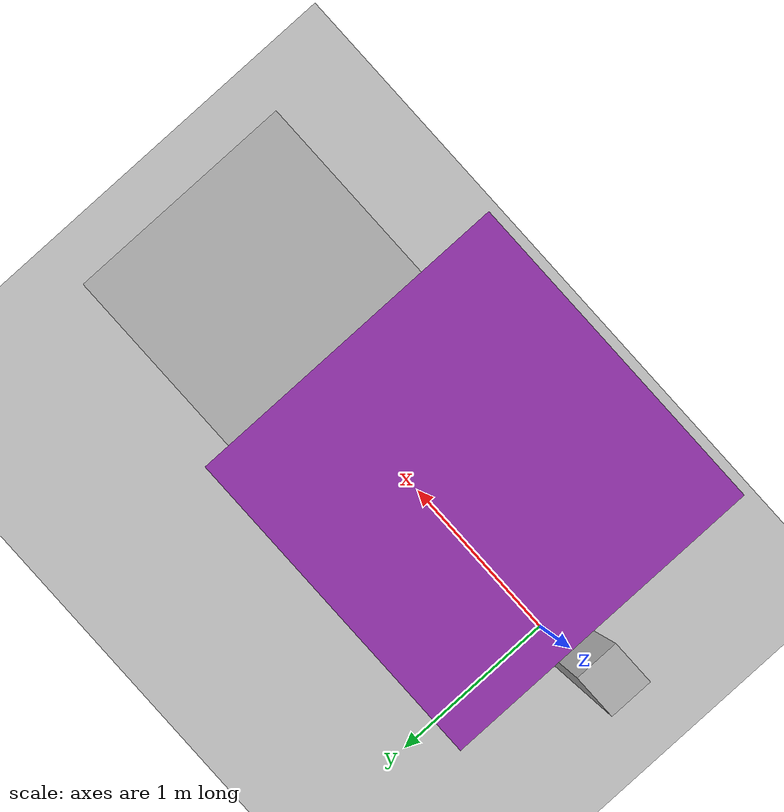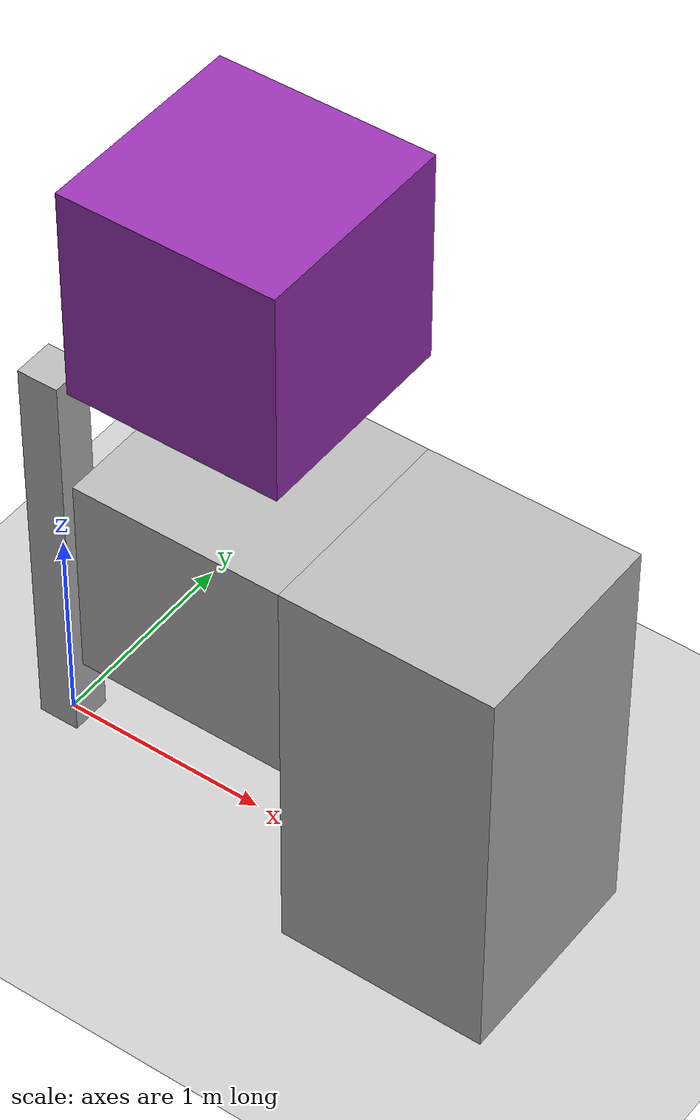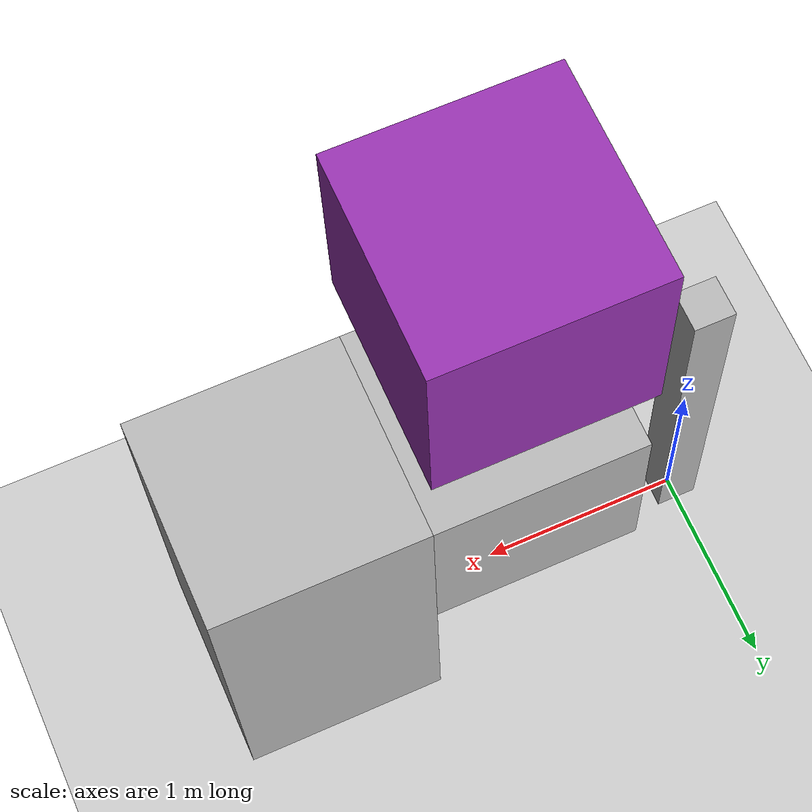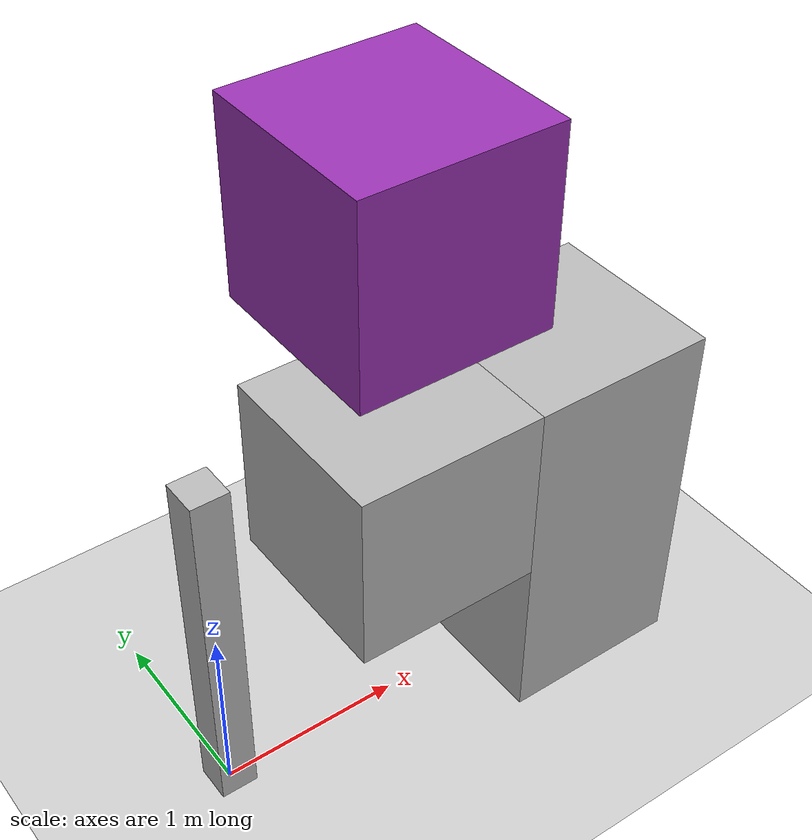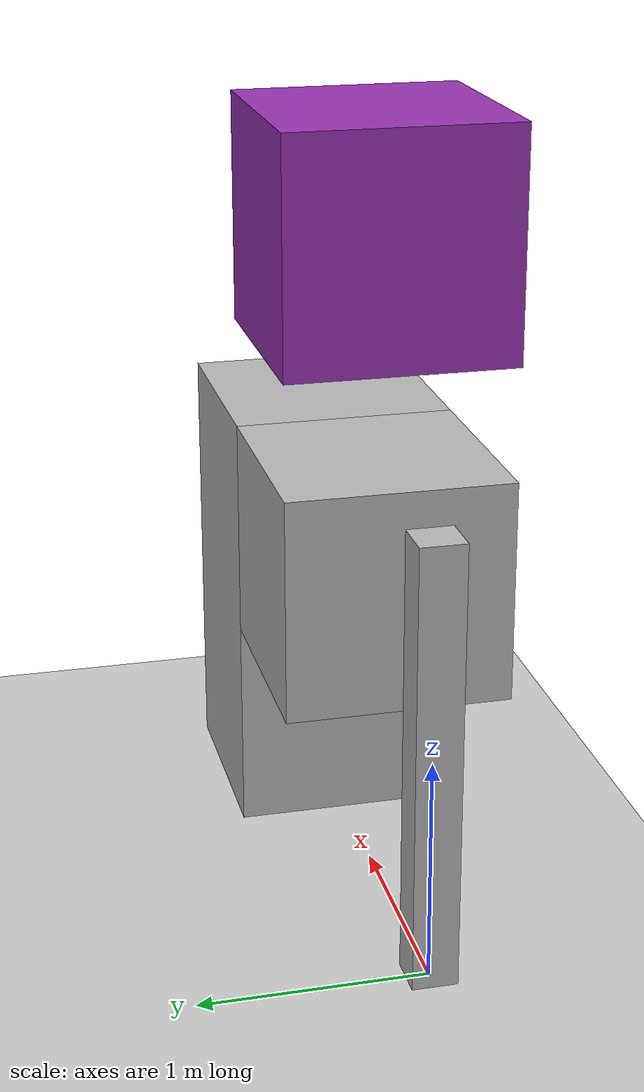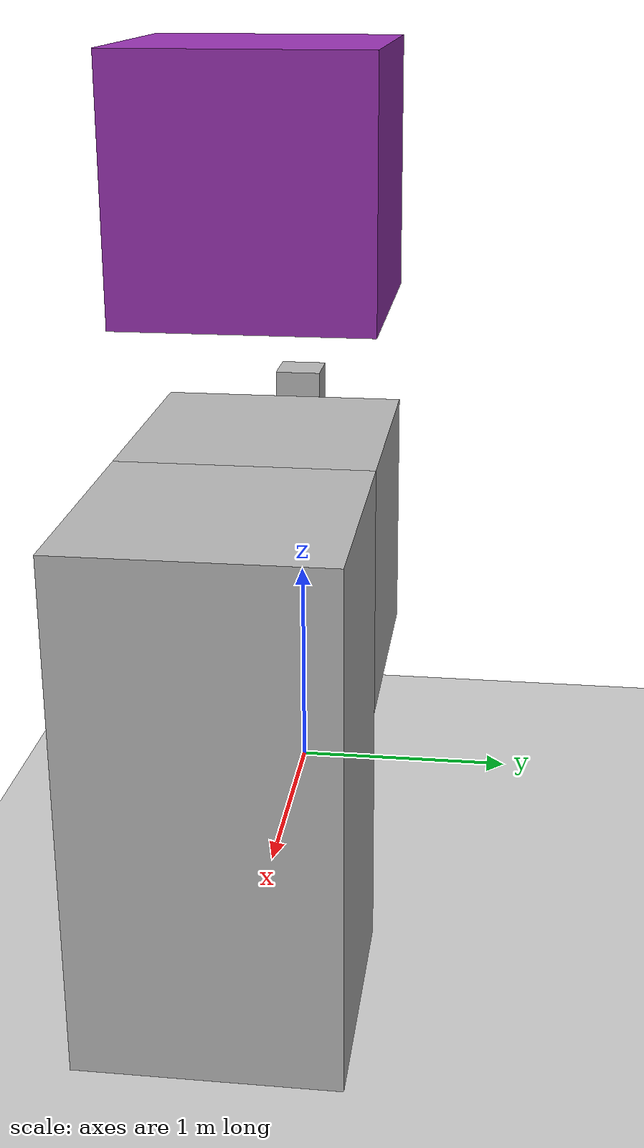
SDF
<?xml version="1.0" ?>
<sdf version="1.6">
  <world name="default">
    <include>
      <uri>model://ground_plane</uri>
    </include>

    <include>
      <uri>model://sun</uri>
    </include>

    <model name="post">
      <pose>0 0 1 0 0 0</pose>
      <link name="link">
        <collision name="collision">
          <geometry>
            <box>
              <size>0.2 0.2 2</size>
            </box>
          </geometry>
        </collision>
        <visual name="visual">
          <geometry>
            <box>
              <size>.2 .2 2</size>
            </box>
          </geometry>
        </visual>

        <sensor name="logical_camera" type="logical_camera">
          <pose>0 0 1 0 0 0</pose>
          <logical_camera>
            <near>0.55</near>
            <far>2.5</far>
            <horizontal_fov>1.05</horizontal_fov>
            <aspect_ratio>1.8</aspect_ratio>
          </logical_camera>

          <visualize>true</visualize>
          <always_on>true</always_on>
          <update_rate>10</update_rate>
          <plugin name="SomeMeaningfulName" filename="libDataViaPlugin.so"/>
        </sensor>
      </link>
    </model>

    <model name="tall_target">
      <pose>2 0 1 0 0 0</pose>
      <link name="link">
        <collision name="tall_collision">
          <geometry>
            <box>
              <size>1 1 2</size>
            </box>
          </geometry>
        </collision>
        <visual name="tall_visual">
          <geometry>
            <box>
              <size>1 1 2</size>
            </box>
          </geometry>
        </visual>
      </link>
    </model>

    <model name="base_target">
      <pose>1 0 1.5 0 0 0</pose>
      <link name="link">
        <collision name="base_collision">
          <geometry>
            <box>
              <size>1 1 1</size>
            </box>
          </geometry>
        </collision>
        <visual name="base_visual">
          <geometry>
            <box>
              <size>1 1 1</size>
            </box>
          </geometry>
        </visual>
      </link>
      <model name="nested_target">
        <pose>0 0 1.5 0 0 0</pose>
        <link name="link">
          <collision name="nested_collision">
            <geometry>
              <box>
                <size>1 1 1</size>
              </box>
            </geometry>
          </collision>
          <visual name="nested_visual">
            <geometry>
              <box>
                <size>1 1 1</size>
              </box>
            </geometry>
          <material>
            <script>
              <uri>file://../../wireframe.material</uri>
              <name>Wireframe/Purple</name>
            </script>
          </material>
          </visual>
        </link>
      </model>
    </model>
  </world>
</sdf>
